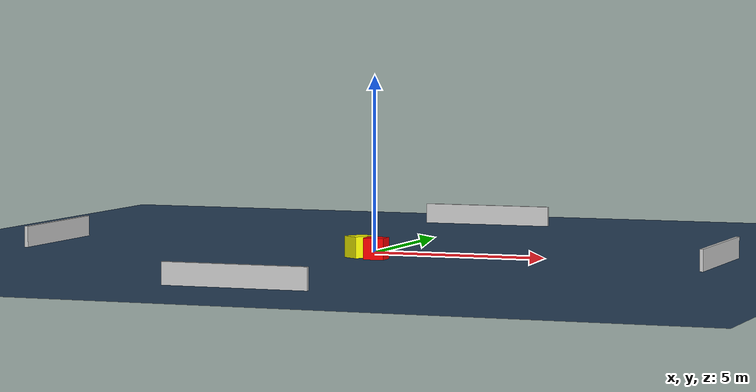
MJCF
<?xml version="1.0" ?>
<mujoco model="generated_environment">
  <option timestep="0.01" integrator="RK4" cone="elliptic"/>
  <default>
    <geom density="1"/>
  </default>
  <asset>
    <texture builtin="gradient" height="3072" name="skybox" rgb1="0.3 0.5 0.7" rgb2="0 0 0" type="skybox" width="512"/>
    <texture builtin="checker" height="300" name="groundplane" rgb1="0.2 0.3 0.4" rgb2="0.1 0.2 0.3" type="2d" width="300"/>
    <material name="groundplane" reflectance="0.2" texrepeat="5 5" texture="groundplane"/>
  </asset>
  <worldbody>
    <light dir="0 0 -1" directional="true" pos="0 0 1.5"/>
    <geom condim="3" friction="0.5 0.005 0.001" material="groundplane" name="floor" pos="0 0 0" size="0 0 0.05" type="plane"/>
    <body name="walls">
      <geom name="wall_1" condim="4" pos="-10.0 0.0 0.3" rgba="0.800000011920929 0.800000011920929 0.800000011920929 1.0" size="0.05 2.0 0.3" type="box"/>
      <geom name="wall_2" condim="4" pos="10.0 0.0 0.3" rgba="0.800000011920929 0.800000011920929 0.800000011920929 1.0" size="0.05 2.0 0.3" type="box"/>
      <geom name="wall_3" condim="4" pos="0.0 -10.0 0.3" rgba="0.800000011920929 0.800000011920929 0.800000011920929 1.0" size="2.0 0.05 0.3" type="box"/>
      <geom name="wall_4" condim="4" pos="0.0 10.0 0.3" rgba="0.800000011920929 0.800000011920929 0.800000011920929 1.0" size="2.0 0.05 0.3" type="box"/>
    </body>
    <body name="robot">
      <joint name="joint_x" type="slide" pos="0 0 0" axis="1 0 0"/>
      <joint name="joint_y" type="slide" pos="0 0 0" axis="0 1 0"/>
      <geom name="robot" type="cylinder" pos="0.0 0.0 0.2" size="0.2 0.2 0.0" mass="5.0" friction="1.0 0.005 0.0001" condim="4" rgba="1.0 1.0 0.0 1.0"/>
    </body>
    <body name="obstacle_1_movable">
      <geom name="obstacle_1_movable" condim="4" pos="0.0894257321691674 -1.4333372033296317 0.3" euler="0 0 57.49992160090494" friction="0.0 0.005 0.001" rgba="1.0 1.0 0.0 1.0" size="0.3280148406975713 0.2637806693378519 0.3" type="box" mass="0.1"/>
      <joint type="free"/>
    </body>
    <body name="obstacle_2_static">
      <geom name="obstacle_2_static" condim="4" pos="0.7151759873567229 -1.800907986757643 0.3" euler="0 0 181.96499887919555" friction="0.0 0.005 0.001" rgba="1.0 0.0 0.0 1.0" size="0.29404078544259504 0.247634454206359 0.3" type="box"/>
    </body>
  </worldbody>
  <actuator>
    <motor name="actuator_x" joint="joint_x" gear="1" ctrlrange="-1 1"/>
    <motor name="actuator_y" joint="joint_y" gear="1" ctrlrange="-1 1"/>
  </actuator>
</mujoco>
